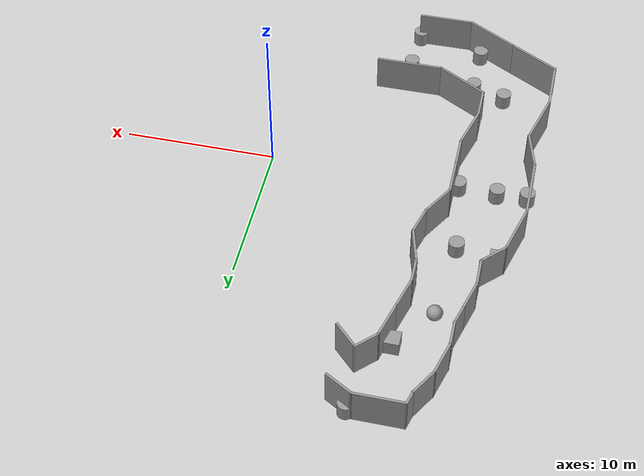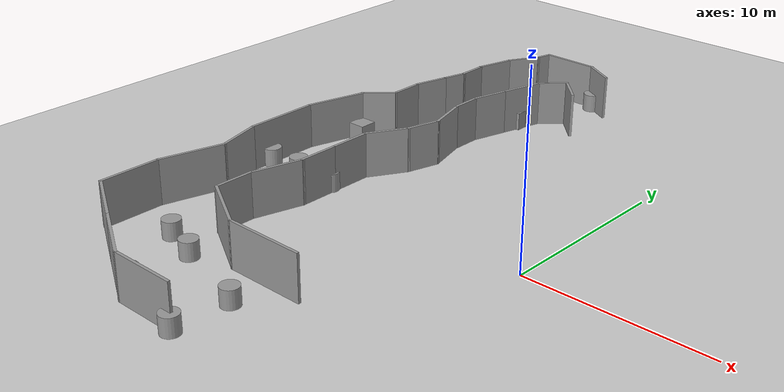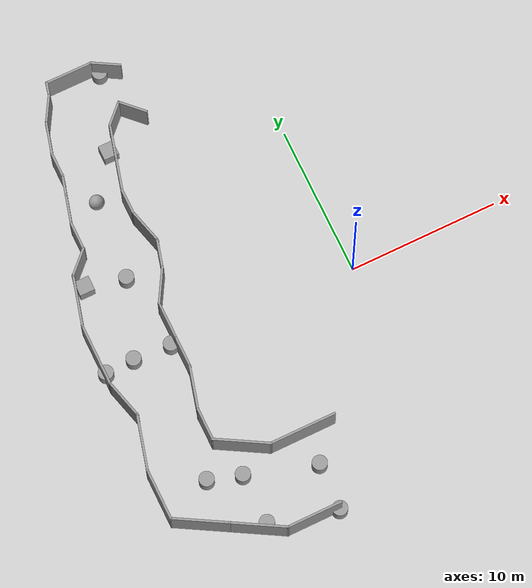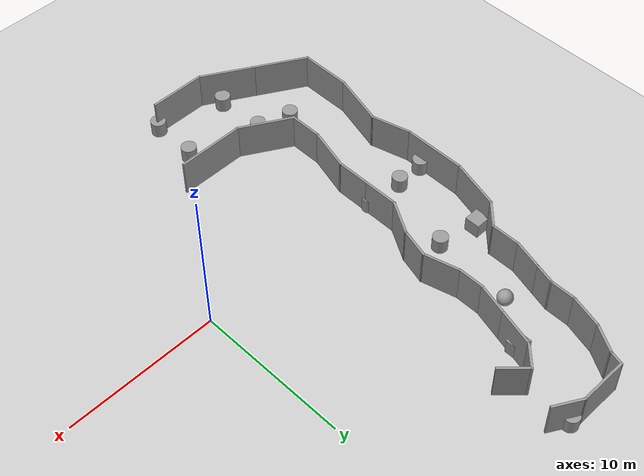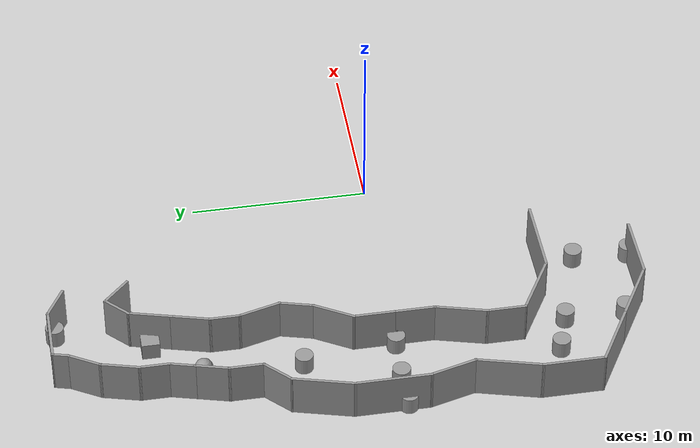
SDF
<sdf version="1.7">
 <world name="default">
  <model name="ground_plane">
   <static>1</static>
   <link name="link">
    <collision name="collision">
     <geometry><plane><normal>0 0 1</normal><size>100 100</size></plane></geometry>
     <surface><friction><ode><mu>100</mu><mu2>50</mu2></ode></friction></surface>
    </collision>
    <visual name="visual">
     <cast_shadows>0</cast_shadows>
     <geometry><plane><normal>0 0 1</normal><size>100 100</size></plane></geometry>
     <material>
      <script><uri>file://media/materials/scripts/gazebo.material</uri><name>Gazebo/Grey</name></script>
     </material>
    </visual>
   </link>
  </model>
  <model name="racetrackgap">
   <pose>0.224585 2.63558 0 0 -0 0</pose>
   <link name="Wall_103">
    <collision name="Wall_103_Collision">
     <geometry><box><size>2 0.15 2.5</size></box></geometry>
     <pose>0 0 1.25 0 -0 0</pose>
    </collision>
    <visual name="Wall_103_Visual">
     <pose>0 0 1.25 0 -0 0</pose>
     <geometry><box><size>2 0.15 2.5</size></box></geometry>
     <material>
      <script><uri>file://media/materials/scripts/gazebo.material</uri><name>Gazebo/Grey</name></script>
      <ambient>1 1 1 1</ambient>
     </material>
     <meta><layer>0</layer></meta>
    </visual>
    <pose>-8.46036 12.4756 0 0 -0 2.35619</pose>
   </link>
   <link name="Wall_104">
    <collision name="Wall_104_Collision">
     <geometry><box><size>1.75 0.15 2.5</size></box></geometry>
     <pose>0 0 1.25 0 -0 0</pose>
    </collision>
    <visual name="Wall_104_Visual">
     <pose>0 0 1.25 0 -0 0</pose>
     <geometry><box><size>1.75 0.15 2.5</size></box></geometry>
     <material>
      <script><uri>file://media/materials/scripts/gazebo.material</uri><name>Gazebo/Grey</name></script>
      <ambient>1 1 1 1</ambient>
     </material>
     <meta><layer>0</layer></meta>
    </visual>
    <pose>-9.68012 12.564 0 0 -0 -2.35619</pose>
   </link>
   <link name="Wall_105">
    <collision name="Wall_105_Collision">
     <geometry><box><size>2.5 0.15 2.5</size></box></geometry>
     <pose>0 0 1.25 0 -0 0</pose>
    </collision>
    <visual name="Wall_105_Visual">
     <pose>0 0 1.25 0 -0 0</pose>
     <geometry><box><size>2.5 0.15 2.5</size></box></geometry>
     <material>
      <script><uri>file://media/materials/scripts/gazebo.material</uri><name>Gazebo/Grey</name></script>
      <ambient>1 1 1 1</ambient>
     </material>
     <meta><layer>0</layer></meta>
    </visual>
    <pose>-10.5499 10.8633 0 0 -0 -1.8326</pose>
   </link>
   <link name="Wall_106">
    <collision name="Wall_106_Collision">
     <geometry><box><size>2.25 0.15 2.5</size></box></geometry>
     <pose>0 0 1.25 0 -0 0</pose>
    </collision>
    <visual name="Wall_106_Visual">
     <pose>0 0 1.25 0 -0 0</pose>
     <geometry><box><size>2.25 0.15 2.5</size></box></geometry>
     <material>
      <script><uri>file://media/materials/scripts/gazebo.material</uri><name>Gazebo/Grey</name></script>
      <ambient>1 1 1 1</ambient>
     </material>
     <meta><layer>0</layer></meta>
    </visual>
    <pose>-11.1258 8.71414 0 0 -0 -1.8326</pose>
   </link>
   <link name="Wall_107">
    <collision name="Wall_107_Collision">
     <geometry><box><size>1.75 0.15 2.5</size></box></geometry>
     <pose>0 0 1.25 0 -0 0</pose>
    </collision>
    <visual name="Wall_107_Visual">
     <pose>0 0 1.25 0 -0 0</pose>
     <geometry><box><size>1.75 0.15 2.5</size></box></geometry>
     <material>
      <script><uri>file://media/materials/scripts/gazebo.material</uri><name>Gazebo/Grey</name></script>
      <ambient>1 1 1 1</ambient>
     </material>
     <meta><layer>0</layer></meta>
    </visual>
    <pose>-11.3975 6.89992 0 0 -0 -1.5708</pose>
   </link>
   <link name="Wall_108">
    <collision name="Wall_108_Collision">
     <geometry><box><size>2.5 0.15 2.5</size></box></geometry>
     <pose>0 0 1.25 0 -0 0</pose>
    </collision>
    <visual name="Wall_108_Visual">
     <pose>0 0 1.25 0 -0 0</pose>
     <geometry><box><size>2.5 0.15 2.5</size></box></geometry>
     <material>
      <script><uri>file://media/materials/scripts/gazebo.material</uri><name>Gazebo/Grey</name></script>
      <ambient>1 1 1 1</ambient>
     </material>
     <meta><layer>0</layer></meta>
    </visual>
    <pose>-11.0934 4.96496 0 0 -0 -1.309</pose>
   </link>
   <link name="Wall_109">
    <collision name="Wall_109_Collision">
     <geometry><box><size>2 0.15 2.5</size></box></geometry>
     <pose>0 0 1.25 0 -0 0</pose>
    </collision>
    <visual name="Wall_109_Visual">
     <pose>0 0 1.25 0 -0 0</pose>
     <geometry><box><size>2 0.15 2.5</size></box></geometry>
     <material>
      <script><uri>file://media/materials/scripts/gazebo.material</uri><name>Gazebo/Grey</name></script>
      <ambient>1 1 1 1</ambient>
     </material>
     <meta><layer>0</layer></meta>
    </visual>
    <pose>-11.0287 2.93651 0 0 -0 -1.8326</pose>
   </link>
   <link name="Wall_110">
    <collision name="Wall_110_Collision">
     <geometry><box><size>2.5 0.15 2.5</size></box></geometry>
     <pose>0 0 1.25 0 -0 0</pose>
    </collision>
    <visual name="Wall_110_Visual">
     <pose>0 0 1.25 0 -0 0</pose>
     <geometry><box><size>2.5 0.15 2.5</size></box></geometry>
     <material>
      <script><uri>file://media/materials/scripts/gazebo.material</uri><name>Gazebo/Grey</name></script>
      <ambient>1 1 1 1</ambient>
     </material>
     <meta><layer>0</layer></meta>
    </visual>
    <pose>-11.8556 1.02545 0 0 -0 -2.0944</pose>
   </link>
   <link name="Wall_111">
    <collision name="Wall_111_Collision">
     <geometry><box><size>2.5 0.15 2.5</size></box></geometry>
     <pose>0 0 1.25 0 -0 0</pose>
    </collision>
    <visual name="Wall_111_Visual">
     <pose>0 0 1.25 0 -0 0</pose>
     <geometry><box><size>2.5 0.15 2.5</size></box></geometry>
     <material>
      <script><uri>file://media/materials/scripts/gazebo.material</uri><name>Gazebo/Grey</name></script>
      <ambient>1 1 1 1</ambient>
     </material>
     <meta><layer>0</layer></meta>
    </visual>
    <pose>-12.4431 -1.16713 0 0 -0 -1.5708</pose>
   </link>
   <link name="Wall_112">
    <collision name="Wall_112_Collision">
     <geometry><box><size>2.25 0.15 2.5</size></box></geometry>
     <pose>0 0 1.25 0 -0 0</pose>
    </collision>
    <visual name="Wall_112_Visual">
     <pose>0 0 1.25 0 -0 0</pose>
     <geometry><box><size>2.25 0.15 2.5</size></box></geometry>
     <material>
      <script><uri>file://media/materials/scripts/gazebo.material</uri><name>Gazebo/Grey</name></script>
      <ambient>1 1 1 1</ambient>
     </material>
     <meta><layer>0</layer></meta>
    </visual>
    <pose>-12.4431 -3.39213 0 0 -0 -1.5708</pose>
   </link>
   <link name="Wall_113">
    <collision name="Wall_113_Collision">
     <geometry><box><size>3 0.15 2.5</size></box></geometry>
     <pose>0 0 1.25 0 -0 0</pose>
    </collision>
    <visual name="Wall_113_Visual">
     <pose>0 0 1.25 0 -0 0</pose>
     <geometry><box><size>3 0.15 2.5</size></box></geometry>
     <material>
      <script><uri>file://media/materials/scripts/gazebo.material</uri><name>Gazebo/Grey</name></script>
      <ambient>1 1 1 1</ambient>
     </material>
     <meta><layer>0</layer></meta>
    </visual>
    <pose>-12.812 -5.81857 0 0 -0 -1.8326</pose>
   </link>
   <link name="Wall_114">
    <collision name="Wall_114_Collision">
     <geometry><box><size>2.25 0.15 2.5</size></box></geometry>
     <pose>0 0 1.25 0 -0 0</pose>
    </collision>
    <visual name="Wall_114_Visual">
     <pose>0 0 1.25 0 -0 0</pose>
     <geometry><box><size>2.25 0.15 2.5</size></box></geometry>
     <material>
      <script><uri>file://media/materials/scripts/gazebo.material</uri><name>Gazebo/Grey</name></script>
      <ambient>1 1 1 1</ambient>
     </material>
     <meta><layer>0</layer></meta>
    </visual>
    <pose>-13.1808 -8.24502 0 0 -0 -1.5708</pose>
   </link>
   <link name="Wall_115">
    <collision name="Wall_115_Collision">
     <geometry><box><size>3.75 0.15 2.5</size></box></geometry>
     <pose>0 0 1.25 0 -0 0</pose>
    </collision>
    <visual name="Wall_115_Visual">
     <pose>0 0 1.25 0 -0 0</pose>
     <geometry><box><size>3.75 0.15 2.5</size></box></geometry>
     <material>
      <script><uri>file://media/materials/scripts/gazebo.material</uri><name>Gazebo/Grey</name></script>
      <ambient>1 1 1 1</ambient>
     </material>
     <meta><layer>0</layer></meta>
    </visual>
    <pose>-11.6219 -10.195 0 0 -0 -0.523599</pose>
   </link>
   <link name="Wall_116">
    <collision name="Wall_116_Collision">
     <geometry><box><size>4.5 0.15 2.5</size></box></geometry>
     <pose>0 0 1.25 0 -0 0</pose>
    </collision>
    <visual name="Wall_116_Visual">
     <pose>0 0 1.25 0 -0 0</pose>
     <geometry><box><size>4.5 0.15 2.5</size></box></geometry>
     <material>
      <script><uri>file://media/materials/scripts/gazebo.material</uri><name>Gazebo/Grey</name></script>
      <ambient>1 1 1 1</ambient>
     </material>
     <meta><layer>0</layer></meta>
    </visual>
    <pose>-7.88808 -11.095 0 0 -0 0</pose>
   </link>
   <link name="Wall_48">
    <collision name="Wall_48_Collision">
     <geometry><box><size>2 0.15 2.5</size></box></geometry>
     <pose>0 0 1.25 0 -0 0</pose>
    </collision>
    <visual name="Wall_48_Visual">
     <pose>0 0 1.25 0 -0 0</pose>
     <geometry><box><size>2 0.15 2.5</size></box></geometry>
     <material>
      <script><uri>file://media/materials/scripts/gazebo.material</uri><name>Gazebo/Grey</name></script>
      <ambient>1 1 1 1</ambient>
     </material>
     <meta><layer>0</layer></meta>
    </visual>
    <pose>-8.78206 15.827 0 0 -0 2.61799</pose>
   </link>
   <link name="Wall_49">
    <collision name="Wall_49_Collision">
     <geometry><box><size>3.25 0.15 2.5</size></box></geometry>
     <pose>0 0 1.25 0 -0 0</pose>
    </collision>
    <visual name="Wall_49_Visual">
     <pose>0 0 1.25 0 -0 0</pose>
     <geometry><box><size>3.25 0.15 2.5</size></box></geometry>
     <material>
      <script><uri>file://media/materials/scripts/gazebo.material</uri><name>Gazebo/Grey</name></script>
      <ambient>1 1 1 1</ambient>
     </material>
     <meta><layer>0</layer></meta>
    </visual>
    <pose>-11.1331 16.2895 0 0 -0 3.14159</pose>
   </link>
   <link name="Wall_50">
    <collision name="Wall_50_Collision">
     <geometry><box><size>1 0.15 2.5</size></box></geometry>
     <pose>0 0 1.25 0 -0 0</pose>
    </collision>
    <visual name="Wall_50_Visual">
     <pose>0 0 1.25 0 -0 0</pose>
     <geometry><box><size>1 0.15 2.5</size></box></geometry>
     <material>
      <script><uri>file://media/materials/scripts/gazebo.material</uri><name>Gazebo/Grey</name></script>
      <ambient>1 1 1 1</ambient>
     </material>
     <meta><layer>0</layer></meta>
    </visual>
    <pose>-12.7931 15.879 0 0 -0 -1.8326</pose>
   </link>
   <link name="Wall_51">
    <collision name="Wall_51_Collision">
     <geometry><box><size>2 0.15 2.5</size></box></geometry>
     <pose>0 0 1.25 0 -0 0</pose>
    </collision>
    <visual name="Wall_51_Visual">
     <pose>0 0 1.25 0 -0 0</pose>
     <geometry><box><size>2 0.15 2.5</size></box></geometry>
     <material>
      <script><uri>file://media/materials/scripts/gazebo.material</uri><name>Gazebo/Grey</name></script>
      <ambient>1 1 1 1</ambient>
     </material>
     <meta><layer>0</layer></meta>
    </visual>
    <pose>-13.3656 14.6674 0 0 -0 -2.0944</pose>
   </link>
   <link name="Wall_52">
    <collision name="Wall_52_Collision">
     <geometry><box><size>2.25 0.15 2.5</size></box></geometry>
     <pose>0 0 1.25 0 -0 0</pose>
    </collision>
    <visual name="Wall_52_Visual">
     <pose>0 0 1.25 0 -0 0</pose>
     <geometry><box><size>2.25 0.15 2.5</size></box></geometry>
     <material>
      <script><uri>file://media/materials/scripts/gazebo.material</uri><name>Gazebo/Grey</name></script>
      <ambient>1 1 1 1</ambient>
     </material>
     <meta><layer>0</layer></meta>
    </visual>
    <pose>-14.0999 12.8521 0 0 -0 -1.8326</pose>
   </link>
   <link name="Wall_53">
    <collision name="Wall_53_Collision">
     <geometry><box><size>1.75 0.15 2.5</size></box></geometry>
     <pose>0 0 1.25 0 -0 0</pose>
    </collision>
    <visual name="Wall_53_Visual">
     <pose>0 0 1.25 0 -0 0</pose>
     <geometry><box><size>1.75 0.15 2.5</size></box></geometry>
     <material>
      <script><uri>file://media/materials/scripts/gazebo.material</uri><name>Gazebo/Grey</name></script>
      <ambient>1 1 1 1</ambient>
     </material>
     <meta><layer>0</layer></meta>
    </visual>
    <pose>-14.3717 11.0378 0 0 -0 -1.5708</pose>
   </link>
   <link name="Wall_54">
    <collision name="Wall_54_Collision">
     <geometry><box><size>1.5 0.15 2.5</size></box></geometry>
     <pose>0 0 1.25 0 -0 0</pose>
    </collision>
    <visual name="Wall_54_Visual">
     <pose>0 0 1.25 0 -0 0</pose>
     <geometry><box><size>1.5 0.15 2.5</size></box></geometry>
     <material>
      <script><uri>file://media/materials/scripts/gazebo.material</uri><name>Gazebo/Grey</name></script>
      <ambient>1 1 1 1</ambient>
     </material>
     <meta><layer>0</layer></meta>
    </visual>
    <pose>-14.5464 9.58585 0 0 -0 -1.8326</pose>
   </link>
   <link name="Wall_55">
    <collision name="Wall_55_Collision">
     <geometry><box><size>2 0.15 2.5</size></box></geometry>
     <pose>0 0 1.25 0 -0 0</pose>
    </collision>
    <visual name="Wall_55_Visual">
     <pose>0 0 1.25 0 -0 0</pose>
     <geometry><box><size>2 0.15 2.5</size></box></geometry>
     <material>
      <script><uri>file://media/materials/scripts/gazebo.material</uri><name>Gazebo/Grey</name></script>
      <ambient>1 1 1 1</ambient>
     </material>
     <meta><layer>0</layer></meta>
    </visual>
    <pose>-14.9605 8.04036 0 0 -0 -1.8326</pose>
   </link>
   <link name="Wall_56">
    <collision name="Wall_56_Collision">
     <geometry><box><size>2 0.15 2.5</size></box></geometry>
     <pose>0 0 1.25 0 -0 0</pose>
    </collision>
    <visual name="Wall_56_Visual">
     <pose>0 0 1.25 0 -0 0</pose>
     <geometry><box><size>2 0.15 2.5</size></box></geometry>
     <material>
      <script><uri>file://media/materials/scripts/gazebo.material</uri><name>Gazebo/Grey</name></script>
      <ambient>1 1 1 1</ambient>
     </material>
     <meta><layer>0</layer></meta>
    </visual>
    <pose>-15.1999 6.22188 0 0 -0 -1.5708</pose>
   </link>
   <link name="Wall_57">
    <collision name="Wall_57_Collision">
     <geometry><box><size>2 0.15 2.5</size></box></geometry>
     <pose>0 0 1.25 0 -0 0</pose>
    </collision>
    <visual name="Wall_57_Visual">
     <pose>0 0 1.25 0 -0 0</pose>
     <geometry><box><size>2 0.15 2.5</size></box></geometry>
     <material>
      <script><uri>file://media/materials/scripts/gazebo.material</uri><name>Gazebo/Grey</name></script>
      <ambient>1 1 1 1</ambient>
     </material>
     <meta><layer>0</layer></meta>
    </visual>
    <pose>-15.8539 4.64281 0 0 -0 -2.35619</pose>
   </link>
   <link name="Wall_58">
    <collision name="Wall_58_Collision">
     <geometry><box><size>3.5 0.15 2.5</size></box></geometry>
     <pose>0 0 1.25 0 -0 0</pose>
    </collision>
    <visual name="Wall_58_Visual">
     <pose>0 0 1.25 0 -0 0</pose>
     <geometry><box><size>3.5 0.15 2.5</size></box></geometry>
     <material>
      <script><uri>file://media/materials/scripts/gazebo.material</uri><name>Gazebo/Grey</name></script>
      <ambient>1 1 1 1</ambient>
     </material>
     <meta><layer>0</layer></meta>
    </visual>
    <pose>-16.9415 2.37081 0 0 -0 -1.8326</pose>
   </link>
   <link name="Wall_59">
    <collision name="Wall_59_Collision">
     <geometry><box><size>4.25 0.15 2.5</size></box></geometry>
     <pose>0 0 1.25 0 -0 0</pose>
    </collision>
    <visual name="Wall_59_Visual">
     <pose>0 0 1.25 0 -0 0</pose>
     <geometry><box><size>4.25 0.15 2.5</size></box></geometry>
     <material>
      <script><uri>file://media/materials/scripts/gazebo.material</uri><name>Gazebo/Grey</name></script>
      <ambient>1 1 1 1</ambient>
     </material>
     <meta><layer>0</layer></meta>
    </visual>
    <pose>-17.3751 -1.29712 0 0 -0 -1.5708</pose>
   </link>
   <link name="Wall_60">
    <collision name="Wall_60_Collision">
     <geometry><box><size>2.75 0.15 2.5</size></box></geometry>
     <pose>0 0 1.25 0 -0 0</pose>
    </collision>
    <visual name="Wall_60_Visual">
     <pose>0 0 1.25 0 -0 0</pose>
     <geometry><box><size>2.75 0.15 2.5</size></box></geometry>
     <material>
      <script><uri>file://media/materials/scripts/gazebo.material</uri><name>Gazebo/Grey</name></script>
      <ambient>1 1 1 1</ambient>
     </material>
     <meta><layer>0</layer></meta>
    </visual>
    <pose>-17.0386 -4.60282 0 0 -0 -1.309</pose>
   </link>
   <link name="Wall_61">
    <collision name="Wall_61_Collision">
     <geometry><box><size>3.75 0.15 2.5</size></box></geometry>
     <pose>0 0 1.25 0 -0 0</pose>
    </collision>
    <visual name="Wall_61_Visual">
     <pose>0 0 1.25 0 -0 0</pose>
     <geometry><box><size>3.75 0.15 2.5</size></box></geometry>
     <material>
      <script><uri>file://media/materials/scripts/gazebo.material</uri><name>Gazebo/Grey</name></script>
      <ambient>1 1 1 1</ambient>
     </material>
     <meta><layer>0</layer></meta>
    </visual>
    <pose>-17.168 -7.59719 0 0 -0 -1.8326</pose>
   </link>
   <link name="Wall_62">
    <collision name="Wall_62_Collision">
     <geometry><box><size>3.5 0.15 2.5</size></box></geometry>
     <pose>0 0 1.25 0 -0 0</pose>
    </collision>
    <visual name="Wall_62_Visual">
     <pose>0 0 1.25 0 -0 0</pose>
     <geometry><box><size>3.5 0.15 2.5</size></box></geometry>
     <material>
      <script><uri>file://media/materials/scripts/gazebo.material</uri><name>Gazebo/Grey</name></script>
      <ambient>1 1 1 1</ambient>
     </material>
     <meta><layer>0</layer></meta>
    </visual>
    <pose>-17.6339 -11.0109 0 0 -0 -1.5708</pose>
   </link>
   <link name="Wall_63">
    <collision name="Wall_63_Collision">
     <geometry><box><size>3.75 0.15 2.5</size></box></geometry>
     <pose>0 0 1.25 0 -0 0</pose>
    </collision>
    <visual name="Wall_63_Visual">
     <pose>0 0 1.25 0 -0 0</pose>
     <geometry><box><size>3.75 0.15 2.5</size></box></geometry>
     <material>
      <script><uri>file://media/materials/scripts/gazebo.material</uri><name>Gazebo/Grey</name></script>
      <ambient>1 1 1 1</ambient>
     </material>
     <meta><layer>0</layer></meta>
    </visual>
    <pose>-16.075 -13.5859 0 0 -0 -0.523599</pose>
   </link>
   <link name="Wall_64">
    <collision name="Wall_64_Collision">
     <geometry><box><size>3.75 0.15 2.5</size></box></geometry>
     <pose>0 0 1.25 0 -0 0</pose>
    </collision>
    <visual name="Wall_64_Visual">
     <pose>0 0 1.25 0 -0 0</pose>
     <geometry><box><size>3.75 0.15 2.5</size></box></geometry>
     <material>
      <script><uri>file://media/materials/scripts/gazebo.material</uri><name>Gazebo/Grey</name></script>
      <ambient>1 1 1 1</ambient>
     </material>
     <meta><layer>0</layer></meta>
    </visual>
    <pose>-12.9573 -15.3859 0 0 -0 -0.523599</pose>
   </link>
   <link name="Wall_65">
    <collision name="Wall_65_Collision">
     <geometry><box><size>3.75 0.15 2.5</size></box></geometry>
     <pose>0 0 1.25 0 -0 0</pose>
    </collision>
    <visual name="Wall_65_Visual">
     <pose>0 0 1.25 0 -0 0</pose>
     <geometry><box><size>3.75 0.15 2.5</size></box></geometry>
     <material>
      <script><uri>file://media/materials/scripts/gazebo.material</uri><name>Gazebo/Grey</name></script>
      <ambient>1 1 1 1</ambient>
     </material>
     <meta><layer>0</layer></meta>
    </visual>
    <pose>-9.5985 -16.2859 0 0 -0 0</pose>
   </link>
   <static>1</static>
  </model>
  <model name="objetracetrack">
   <link name="link_19">
    <inertial>
     <mass>1</mass>
     <inertia><ixx>0.145833</ixx><ixy>0</ixy><ixz>0</ixz><iyy>0.145833</iyy><iyz>0</iyz><izz>0.125</izz></inertia>
    </inertial>
    <pose>-7.25312 16.5161 0 0 -0 0</pose>
    <visual name="visual">
     <geometry><cylinder><radius>0.5</radius><length>1</length></cylinder></geometry>
     <material>
      <lighting>1</lighting>
      <script><uri>file://media/materials/scripts/gazebo.material</uri><name>Gazebo/Grey</name></script>
      <shader type="pixel"/>
     </material>
    </visual>
    <collision name="collision">
     <geometry><cylinder><radius>0.5</radius><length>1</length></cylinder></geometry>
     <surface>
      <friction>
       <ode><mu>1</mu><mu2>1</mu2><fdir1>0 0 0</fdir1><slip1>0</slip1><slip2>0</slip2></ode>
       <torsional>
        <coefficient>1</coefficient>
        <patch_radius>0</patch_radius>
        <surface_radius>0</surface_radius>
        <use_patch_radius>1</use_patch_radius>
        <ode><slip>0</slip></ode>
       </torsional>
      </friction>
      <bounce><restitution_coefficient>0</restitution_coefficient><threshold>1e+06</threshold></bounce>
      <contact>
       <collide_without_contact>0</collide_without_contact>
       <collide_without_contact_bitmask>1</collide_without_contact_bitmask>
       <collide_bitmask>1</collide_bitmask>
       <ode>
        <soft_cfm>0</soft_cfm>
        <soft_erp>0.2</soft_erp>
        <kp>1e+13</kp>
        <kd>1</kd>
        <max_vel>0.01</max_vel>
        <min_depth>0</min_depth>
       </ode>
       <bullet>
        <split_impulse>1</split_impulse>
        <split_impulse_penetration_threshold>-0.01</split_impulse_penetration_threshold>
        <soft_cfm>0</soft_cfm>
        <soft_erp>0.2</soft_erp>
        <kp>1e+13</kp>
        <kd>1</kd>
       </bullet>
      </contact>
     </surface>
    </collision>
   </link>
   <link name="link_20">
    <inertial>
     <mass>1</mass>
     <inertia>
      <ixx>0.166667</ixx>
      <ixy>0</ixy>
      <ixz>0</ixz>
      <iyy>0.166667</iyy>
      <iyz>0</iyz>
      <izz>0.166667</izz>
     </inertia>
    </inertial>
    <pose>-8.94757 11.4807 0 0 -0 0</pose>
    <visual name="visual">
     <geometry><box><size>1 1 1</size></box></geometry>
     <material>
      <lighting>1</lighting>
      <script><uri>file://media/materials/scripts/gazebo.material</uri><name>Gazebo/Grey</name></script>
      <shader type="pixel"/>
     </material>
    </visual>
    <collision name="collision">
     <geometry><box><size>1 1 1</size></box></geometry>
     <surface>
      <friction>
       <ode><mu>1</mu><mu2>1</mu2><fdir1>0 0 0</fdir1><slip1>0</slip1><slip2>0</slip2></ode>
       <torsional>
        <coefficient>1</coefficient>
        <patch_radius>0</patch_radius>
        <surface_radius>0</surface_radius>
        <use_patch_radius>1</use_patch_radius>
        <ode><slip>0</slip></ode>
       </torsional>
      </friction>
      <bounce><restitution_coefficient>0</restitution_coefficient><threshold>1e+06</threshold></bounce>
      <contact>
       <collide_without_contact>0</collide_without_contact>
       <collide_without_contact_bitmask>1</collide_without_contact_bitmask>
       <collide_bitmask>1</collide_bitmask>
       <ode>
        <soft_cfm>0</soft_cfm>
        <soft_erp>0.2</soft_erp>
        <kp>1e+13</kp>
        <kd>1</kd>
        <max_vel>0.01</max_vel>
        <min_depth>0</min_depth>
       </ode>
       <bullet>
        <split_impulse>1</split_impulse>
        <split_impulse_penetration_threshold>-0.01</split_impulse_penetration_threshold>
        <soft_cfm>0</soft_cfm>
        <soft_erp>0.2</soft_erp>
        <kp>1e+13</kp>
        <kd>1</kd>
       </bullet>
      </contact>
     </surface>
    </collision>
   </link>
   <link name="link_21">
    <inertial>
     <mass>1</mass>
     <inertia><ixx>0.1</ixx><ixy>0</ixy><ixz>0</ixz><iyy>0.1</iyy><iyz>0</iyz><izz>0.1</izz></inertia>
    </inertial>
    <pose>-11.037 8.79509 0 0 -0 0</pose>
    <visual name="visual">
     <geometry><sphere><radius>0.5</radius></sphere></geometry>
     <material>
      <lighting>1</lighting>
      <script><uri>file://media/materials/scripts/gazebo.material</uri><name>Gazebo/Grey</name></script>
      <shader type="pixel"/>
     </material>
    </visual>
    <collision name="collision">
     <geometry><sphere><radius>0.5</radius></sphere></geometry>
     <surface>
      <friction>
       <ode><mu>1</mu><mu2>1</mu2><fdir1>0 0 0</fdir1><slip1>0</slip1><slip2>0</slip2></ode>
       <torsional>
        <coefficient>1</coefficient>
        <patch_radius>0</patch_radius>
        <surface_radius>0</surface_radius>
        <use_patch_radius>1</use_patch_radius>
        <ode><slip>0</slip></ode>
       </torsional>
      </friction>
      <bounce><restitution_coefficient>0</restitution_coefficient><threshold>1e+06</threshold></bounce>
      <contact>
       <collide_without_contact>0</collide_without_contact>
       <collide_without_contact_bitmask>1</collide_without_contact_bitmask>
       <collide_bitmask>1</collide_bitmask>
       <ode>
        <soft_cfm>0</soft_cfm>
        <soft_erp>0.2</soft_erp>
        <kp>1e+13</kp>
        <kd>1</kd>
        <max_vel>0.01</max_vel>
        <min_depth>0</min_depth>
       </ode>
       <bullet>
        <split_impulse>1</split_impulse>
        <split_impulse_penetration_threshold>-0.01</split_impulse_penetration_threshold>
        <soft_cfm>0</soft_cfm>
        <soft_erp>0.2</soft_erp>
        <kp>1e+13</kp>
        <kd>1</kd>
       </bullet>
      </contact>
     </surface>
    </collision>
   </link>
   <link name="link_22">
    <inertial>
     <mass>1</mass>
     <inertia>
      <ixx>0.166667</ixx>
      <ixy>0</ixy>
      <ixz>0</ixz>
      <iyy>0.166667</iyy>
      <iyz>0</iyz>
      <izz>0.166667</izz>
     </inertia>
    </inertial>
    <pose>-14.1076 3.99625 0 0 -0 0</pose>
    <visual name="visual">
     <geometry><box><size>1 1 1</size></box></geometry>
     <material>
      <lighting>1</lighting>
      <script><uri>file://media/materials/scripts/gazebo.material</uri><name>Gazebo/Grey</name></script>
      <shader type="pixel"/>
     </material>
    </visual>
    <collision name="collision">
     <geometry><box><size>1 1 1</size></box></geometry>
     <surface>
      <friction>
       <ode><mu>1</mu><mu2>1</mu2><fdir1>0 0 0</fdir1><slip1>0</slip1><slip2>0</slip2></ode>
       <torsional>
        <coefficient>1</coefficient>
        <patch_radius>0</patch_radius>
        <surface_radius>0</surface_radius>
        <use_patch_radius>1</use_patch_radius>
        <ode><slip>0</slip></ode>
       </torsional>
      </friction>
      <bounce><restitution_coefficient>0</restitution_coefficient><threshold>1e+06</threshold></bounce>
      <contact>
       <collide_without_contact>0</collide_without_contact>
       <collide_without_contact_bitmask>1</collide_without_contact_bitmask>
       <collide_bitmask>1</collide_bitmask>
       <ode>
        <soft_cfm>0</soft_cfm>
        <soft_erp>0.2</soft_erp>
        <kp>1e+13</kp>
        <kd>1</kd>
        <max_vel>0.01</max_vel>
        <min_depth>0</min_depth>
       </ode>
       <bullet>
        <split_impulse>1</split_impulse>
        <split_impulse_penetration_threshold>-0.01</split_impulse_penetration_threshold>
        <soft_cfm>0</soft_cfm>
        <soft_erp>0.2</soft_erp>
        <kp>1e+13</kp>
        <kd>1</kd>
       </bullet>
      </contact>
     </surface>
    </collision>
   </link>
   <link name="link_23">
    <inertial>
     <mass>1</mass>
     <inertia><ixx>0.145833</ixx><ixy>0</ixy><ixz>0</ixz><iyy>0.145833</iyy><iyz>0</iyz><izz>0.125</izz></inertia>
    </inertial>
    <pose>-10.8016 -1.75228 0 0 -0 0</pose>
    <visual name="visual">
     <geometry><cylinder><radius>0.5</radius><length>1</length></cylinder></geometry>
     <material>
      <lighting>1</lighting>
      <script><uri>file://media/materials/scripts/gazebo.material</uri><name>Gazebo/Grey</name></script>
      <shader type="pixel"/>
     </material>
    </visual>
    <collision name="collision">
     <geometry><cylinder><radius>0.5</radius><length>1</length></cylinder></geometry>
     <surface>
      <friction>
       <ode><mu>1</mu><mu2>1</mu2><fdir1>0 0 0</fdir1><slip1>0</slip1><slip2>0</slip2></ode>
       <torsional>
        <coefficient>1</coefficient>
        <patch_radius>0</patch_radius>
        <surface_radius>0</surface_radius>
        <use_patch_radius>1</use_patch_radius>
        <ode><slip>0</slip></ode>
       </torsional>
      </friction>
      <bounce><restitution_coefficient>0</restitution_coefficient><threshold>1e+06</threshold></bounce>
      <contact>
       <collide_without_contact>0</collide_without_contact>
       <collide_without_contact_bitmask>1</collide_without_contact_bitmask>
       <collide_bitmask>1</collide_bitmask>
       <ode>
        <soft_cfm>0</soft_cfm>
        <soft_erp>0.2</soft_erp>
        <kp>1e+13</kp>
        <kd>1</kd>
        <max_vel>0.01</max_vel>
        <min_depth>0</min_depth>
       </ode>
       <bullet>
        <split_impulse>1</split_impulse>
        <split_impulse_penetration_threshold>-0.01</split_impulse_penetration_threshold>
        <soft_cfm>0</soft_cfm>
        <soft_erp>0.2</soft_erp>
        <kp>1e+13</kp>
        <kd>1</kd>
       </bullet>
      </contact>
     </surface>
    </collision>
   </link>
   <link name="link_24">
    <inertial>
     <mass>1</mass>
     <inertia><ixx>0.145833</ixx><ixy>0</ixy><ixz>0</ixz><iyy>0.145833</iyy><iyz>0</iyz><izz>0.125</izz></inertia>
    </inertial>
    <pose>-13.3144 -1.61028 0 0 -0 0</pose>
    <visual name="visual">
     <geometry><cylinder><radius>0.5</radius><length>1</length></cylinder></geometry>
     <material>
      <lighting>1</lighting>
      <script><uri>file://media/materials/scripts/gazebo.material</uri><name>Gazebo/Grey</name></script>
      <shader type="pixel"/>
     </material>
    </visual>
    <collision name="collision">
     <geometry><cylinder><radius>0.5</radius><length>1</length></cylinder></geometry>
     <surface>
      <friction>
       <ode><mu>1</mu><mu2>1</mu2><fdir1>0 0 0</fdir1><slip1>0</slip1><slip2>0</slip2></ode>
       <torsional>
        <coefficient>1</coefficient>
        <patch_radius>0</patch_radius>
        <surface_radius>0</surface_radius>
        <use_patch_radius>1</use_patch_radius>
        <ode><slip>0</slip></ode>
       </torsional>
      </friction>
      <bounce><restitution_coefficient>0</restitution_coefficient><threshold>1e+06</threshold></bounce>
      <contact>
       <collide_without_contact>0</collide_without_contact>
       <collide_without_contact_bitmask>1</collide_without_contact_bitmask>
       <collide_bitmask>1</collide_bitmask>
       <ode>
        <soft_cfm>0</soft_cfm>
        <soft_erp>0.2</soft_erp>
        <kp>1e+13</kp>
        <kd>1</kd>
        <max_vel>0.01</max_vel>
        <min_depth>0</min_depth>
       </ode>
       <bullet>
        <split_impulse>1</split_impulse>
        <split_impulse_penetration_threshold>-0.01</split_impulse_penetration_threshold>
        <soft_cfm>0</soft_cfm>
        <soft_erp>0.2</soft_erp>
        <kp>1e+13</kp>
        <kd>1</kd>
       </bullet>
      </contact>
     </surface>
    </collision>
   </link>
   <link name="link_25">
    <inertial>
     <mass>1</mass>
     <inertia><ixx>0.145833</ixx><ixy>0</ixy><ixz>0</ixz><iyy>0.145833</iyy><iyz>0</iyz><izz>0.125</izz></inertia>
    </inertial>
    <pose>-15.263 -1.6902 0 0 -0 0</pose>
    <visual name="visual">
     <geometry><cylinder><radius>0.5</radius><length>1</length></cylinder></geometry>
     <material>
      <lighting>1</lighting>
      <script><uri>file://media/materials/scripts/gazebo.material</uri><name>Gazebo/Grey</name></script>
      <shader type="pixel"/>
     </material>
    </visual>
    <collision name="collision">
     <geometry><cylinder><radius>0.5</radius><length>1</length></cylinder></geometry>
     <surface>
      <friction>
       <ode><mu>1</mu><mu2>1</mu2><fdir1>0 0 0</fdir1><slip1>0</slip1><slip2>0</slip2></ode>
       <torsional>
        <coefficient>1</coefficient>
        <patch_radius>0</patch_radius>
        <surface_radius>0</surface_radius>
        <use_patch_radius>1</use_patch_radius>
        <ode><slip>0</slip></ode>
       </torsional>
      </friction>
      <bounce><restitution_coefficient>0</restitution_coefficient><threshold>1e+06</threshold></bounce>
      <contact>
       <collide_without_contact>0</collide_without_contact>
       <collide_without_contact_bitmask>1</collide_without_contact_bitmask>
       <collide_bitmask>1</collide_bitmask>
       <ode>
        <soft_cfm>0</soft_cfm>
        <soft_erp>0.2</soft_erp>
        <kp>1e+13</kp>
        <kd>1</kd>
        <max_vel>0.01</max_vel>
        <min_depth>0</min_depth>
       </ode>
       <bullet>
        <split_impulse>1</split_impulse>
        <split_impulse_penetration_threshold>-0.01</split_impulse_penetration_threshold>
        <soft_cfm>0</soft_cfm>
        <soft_erp>0.2</soft_erp>
        <kp>1e+13</kp>
        <kd>1</kd>
       </bullet>
      </contact>
     </surface>
    </collision>
   </link>
   <link name="link_26">
    <inertial>
     <mass>1</mass>
     <inertia><ixx>0.145833</ixx><ixy>0</ixy><ixz>0</ixz><iyy>0.145833</iyy><iyz>0</iyz><izz>0.125</izz></inertia>
    </inertial>
    <pose>-11.477 3.3998 0 0 -0 0</pose>
    <visual name="visual">
     <geometry><cylinder><radius>0.5</radius><length>1</length></cylinder></geometry>
     <material>
      <lighting>1</lighting>
      <script><uri>file://media/materials/scripts/gazebo.material</uri><name>Gazebo/Grey</name></script>
      <shader type="pixel"/>
     </material>
    </visual>
    <collision name="collision">
     <geometry><cylinder><radius>0.5</radius><length>1</length></cylinder></geometry>
     <surface>
      <friction>
       <ode><mu>1</mu><mu2>1</mu2><fdir1>0 0 0</fdir1><slip1>0</slip1><slip2>0</slip2></ode>
       <torsional>
        <coefficient>1</coefficient>
        <patch_radius>0</patch_radius>
        <surface_radius>0</surface_radius>
        <use_patch_radius>1</use_patch_radius>
        <ode><slip>0</slip></ode>
       </torsional>
      </friction>
      <bounce><restitution_coefficient>0</restitution_coefficient><threshold>1e+06</threshold></bounce>
      <contact>
       <collide_without_contact>0</collide_without_contact>
       <collide_without_contact_bitmask>1</collide_without_contact_bitmask>
       <collide_bitmask>1</collide_bitmask>
       <ode>
        <soft_cfm>0</soft_cfm>
        <soft_erp>0.2</soft_erp>
        <kp>1e+13</kp>
        <kd>1</kd>
        <max_vel>0.01</max_vel>
        <min_depth>0</min_depth>
       </ode>
       <bullet>
        <split_impulse>1</split_impulse>
        <split_impulse_penetration_threshold>-0.01</split_impulse_penetration_threshold>
        <soft_cfm>0</soft_cfm>
        <soft_erp>0.2</soft_erp>
        <kp>1e+13</kp>
        <kd>1</kd>
       </bullet>
      </contact>
     </surface>
    </collision>
   </link>
   <link name="link_27">
    <inertial>
     <mass>1</mass>
     <inertia><ixx>0.145833</ixx><ixy>0</ixy><ixz>0</ixz><iyy>0.145833</iyy><iyz>0</iyz><izz>0.125</izz></inertia>
    </inertial>
    <pose>-12.5145 -10.5787 0 0 -0 0</pose>
    <visual name="visual">
     <geometry><cylinder><radius>0.5</radius><length>1</length></cylinder></geometry>
     <material>
      <lighting>1</lighting>
      <script><uri>file://media/materials/scripts/gazebo.material</uri><name>Gazebo/Grey</name></script>
      <shader type="pixel"/>
     </material>
    </visual>
    <collision name="collision">
     <geometry><cylinder><radius>0.5</radius><length>1</length></cylinder></geometry>
     <surface>
      <friction>
       <ode><mu>1</mu><mu2>1</mu2><fdir1>0 0 0</fdir1><slip1>0</slip1><slip2>0</slip2></ode>
       <torsional>
        <coefficient>1</coefficient>
        <patch_radius>0</patch_radius>
        <surface_radius>0</surface_radius>
        <use_patch_radius>1</use_patch_radius>
        <ode><slip>0</slip></ode>
       </torsional>
      </friction>
      <bounce><restitution_coefficient>0</restitution_coefficient><threshold>1e+06</threshold></bounce>
      <contact>
       <collide_without_contact>0</collide_without_contact>
       <collide_without_contact_bitmask>1</collide_without_contact_bitmask>
       <collide_bitmask>1</collide_bitmask>
       <ode>
        <soft_cfm>0</soft_cfm>
        <soft_erp>0.2</soft_erp>
        <kp>1e+13</kp>
        <kd>1</kd>
        <max_vel>0.01</max_vel>
        <min_depth>0</min_depth>
       </ode>
       <bullet>
        <split_impulse>1</split_impulse>
        <split_impulse_penetration_threshold>-0.01</split_impulse_penetration_threshold>
        <soft_cfm>0</soft_cfm>
        <soft_erp>0.2</soft_erp>
        <kp>1e+13</kp>
        <kd>1</kd>
       </bullet>
      </contact>
     </surface>
    </collision>
   </link>
   <link name="link_29">
    <inertial>
     <mass>1</mass>
     <inertia><ixx>0.145833</ixx><ixy>0</ixy><ixz>0</ixz><iyy>0.145833</iyy><iyz>0</iyz><izz>0.125</izz></inertia>
    </inertial>
    <pose>-10.353 -11.2654 0 0 -0 0</pose>
    <visual name="visual">
     <geometry><cylinder><radius>0.5</radius><length>1</length></cylinder></geometry>
     <material>
      <lighting>1</lighting>
      <script><uri>file://media/materials/scripts/gazebo.material</uri><name>Gazebo/Grey</name></script>
      <shader type="pixel"/>
     </material>
    </visual>
    <collision name="collision">
     <geometry><cylinder><radius>0.5</radius><length>1</length></cylinder></geometry>
     <surface>
      <friction>
       <ode><mu>1</mu><mu2>1</mu2><fdir1>0 0 0</fdir1><slip1>0</slip1><slip2>0</slip2></ode>
       <torsional>
        <coefficient>1</coefficient>
        <patch_radius>0</patch_radius>
        <surface_radius>0</surface_radius>
        <use_patch_radius>1</use_patch_radius>
        <ode><slip>0</slip></ode>
       </torsional>
      </friction>
      <bounce><restitution_coefficient>0</restitution_coefficient><threshold>1e+06</threshold></bounce>
      <contact>
       <collide_without_contact>0</collide_without_contact>
       <collide_without_contact_bitmask>1</collide_without_contact_bitmask>
       <collide_bitmask>1</collide_bitmask>
       <ode>
        <soft_cfm>0</soft_cfm>
        <soft_erp>0.2</soft_erp>
        <kp>1e+13</kp>
        <kd>1</kd>
        <max_vel>0.01</max_vel>
        <min_depth>0</min_depth>
       </ode>
       <bullet>
        <split_impulse>1</split_impulse>
        <split_impulse_penetration_threshold>-0.01</split_impulse_penetration_threshold>
        <soft_cfm>0</soft_cfm>
        <soft_erp>0.2</soft_erp>
        <kp>1e+13</kp>
        <kd>1</kd>
       </bullet>
      </contact>
     </surface>
    </collision>
   </link>
   <link name="link_30">
    <inertial>
     <mass>1</mass>
     <inertia><ixx>0.145833</ixx><ixy>0</ixy><ixz>0</ixz><iyy>0.145833</iyy><iyz>0</iyz><izz>0.125</izz></inertia>
    </inertial>
    <pose>-10.3341 -14.652 0 0 -0 0</pose>
    <visual name="visual">
     <geometry><cylinder><radius>0.5</radius><length>1</length></cylinder></geometry>
     <material>
      <lighting>1</lighting>
      <script><uri>file://media/materials/scripts/gazebo.material</uri><name>Gazebo/Grey</name></script>
      <shader type="pixel"/>
     </material>
    </visual>
    <collision name="collision">
     <geometry><cylinder><radius>0.5</radius><length>1</length></cylinder></geometry>
     <surface>
      <friction>
       <ode><mu>1</mu><mu2>1</mu2><fdir1>0 0 0</fdir1><slip1>0</slip1><slip2>0</slip2></ode>
       <torsional>
        <coefficient>1</coefficient>
        <patch_radius>0</patch_radius>
        <surface_radius>0</surface_radius>
        <use_patch_radius>1</use_patch_radius>
        <ode><slip>0</slip></ode>
       </torsional>
      </friction>
      <bounce><restitution_coefficient>0</restitution_coefficient><threshold>1e+06</threshold></bounce>
      <contact>
       <collide_without_contact>0</collide_without_contact>
       <collide_without_contact_bitmask>1</collide_without_contact_bitmask>
       <collide_bitmask>1</collide_bitmask>
       <ode>
        <soft_cfm>0</soft_cfm>
        <soft_erp>0.2</soft_erp>
        <kp>1e+13</kp>
        <kd>1</kd>
        <max_vel>0.01</max_vel>
        <min_depth>0</min_depth>
       </ode>
       <bullet>
        <split_impulse>1</split_impulse>
        <split_impulse_penetration_threshold>-0.01</split_impulse_penetration_threshold>
        <soft_cfm>0</soft_cfm>
        <soft_erp>0.2</soft_erp>
        <kp>1e+13</kp>
        <kd>1</kd>
       </bullet>
      </contact>
     </surface>
    </collision>
   </link>
   <link name="link_31">
    <inertial>
     <mass>1</mass>
     <inertia><ixx>0.145833</ixx><ixy>0</ixy><ixz>0</ixz><iyy>0.145833</iyy><iyz>0</iyz><izz>0.125</izz></inertia>
    </inertial>
    <pose>-5.75444 -12.6943 0 0 -0 0</pose>
    <visual name="visual">
     <geometry><cylinder><radius>0.5</radius><length>1</length></cylinder></geometry>
     <material>
      <lighting>1</lighting>
      <script><uri>file://media/materials/scripts/gazebo.material</uri><name>Gazebo/Grey</name></script>
      <shader type="pixel"/>
     </material>
    </visual>
    <collision name="collision">
     <geometry><cylinder><radius>0.5</radius><length>1</length></cylinder></geometry>
     <surface>
      <friction>
       <ode><mu>1</mu><mu2>1</mu2><fdir1>0 0 0</fdir1><slip1>0</slip1><slip2>0</slip2></ode>
       <torsional>
        <coefficient>1</coefficient>
        <patch_radius>0</patch_radius>
        <surface_radius>0</surface_radius>
        <use_patch_radius>1</use_patch_radius>
        <ode><slip>0</slip></ode>
       </torsional>
      </friction>
      <bounce><restitution_coefficient>0</restitution_coefficient><threshold>1e+06</threshold></bounce>
      <contact>
       <collide_without_contact>0</collide_without_contact>
       <collide_without_contact_bitmask>1</collide_without_contact_bitmask>
       <collide_bitmask>1</collide_bitmask>
       <ode>
        <soft_cfm>0</soft_cfm>
        <soft_erp>0.2</soft_erp>
        <kp>1e+13</kp>
        <kd>1</kd>
        <max_vel>0.01</max_vel>
        <min_depth>0</min_depth>
       </ode>
       <bullet>
        <split_impulse>1</split_impulse>
        <split_impulse_penetration_threshold>-0.01</split_impulse_penetration_threshold>
        <soft_cfm>0</soft_cfm>
        <soft_erp>0.2</soft_erp>
        <kp>1e+13</kp>
        <kd>1</kd>
       </bullet>
      </contact>
     </surface>
    </collision>
   </link>
   <link name="link_32">
    <inertial>
     <mass>1</mass>
     <inertia><ixx>0.145833</ixx><ixy>0</ixy><ixz>0</ixz><iyy>0.145833</iyy><iyz>0</iyz><izz>0.125</izz></inertia>
    </inertial>
    <pose>-5.88007 -15.8232 0 0 -0 0</pose>
    <visual name="visual">
     <geometry><cylinder><radius>0.5</radius><length>1</length></cylinder></geometry>
     <material>
      <lighting>1</lighting>
      <script><uri>file://media/materials/scripts/gazebo.material</uri><name>Gazebo/Grey</name></script>
      <shader type="pixel"/>
     </material>
    </visual>
    <collision name="collision">
     <geometry><cylinder><radius>0.5</radius><length>1</length></cylinder></geometry>
     <surface>
      <friction>
       <ode><mu>1</mu><mu2>1</mu2><fdir1>0 0 0</fdir1><slip1>0</slip1><slip2>0</slip2></ode>
       <torsional>
        <coefficient>1</coefficient>
        <patch_radius>0</patch_radius>
        <surface_radius>0</surface_radius>
        <use_patch_radius>1</use_patch_radius>
        <ode><slip>0</slip></ode>
       </torsional>
      </friction>
      <bounce><restitution_coefficient>0</restitution_coefficient><threshold>1e+06</threshold></bounce>
      <contact>
       <collide_without_contact>0</collide_without_contact>
       <collide_without_contact_bitmask>1</collide_without_contact_bitmask>
       <collide_bitmask>1</collide_bitmask>
       <ode>
        <soft_cfm>0</soft_cfm>
        <soft_erp>0.2</soft_erp>
        <kp>1e+13</kp>
        <kd>1</kd>
        <max_vel>0.01</max_vel>
        <min_depth>0</min_depth>
       </ode>
       <bullet>
        <split_impulse>1</split_impulse>
        <split_impulse_penetration_threshold>-0.01</split_impulse_penetration_threshold>
        <soft_cfm>0</soft_cfm>
        <soft_erp>0.2</soft_erp>
        <kp>1e+13</kp>
        <kd>1</kd>
       </bullet>
      </contact>
     </surface>
    </collision>
   </link>
   <static>0</static>
   <pose>-1.73745 2.12477 0.5 0 -0 0</pose>
  </model>
 </world>
</sdf>
